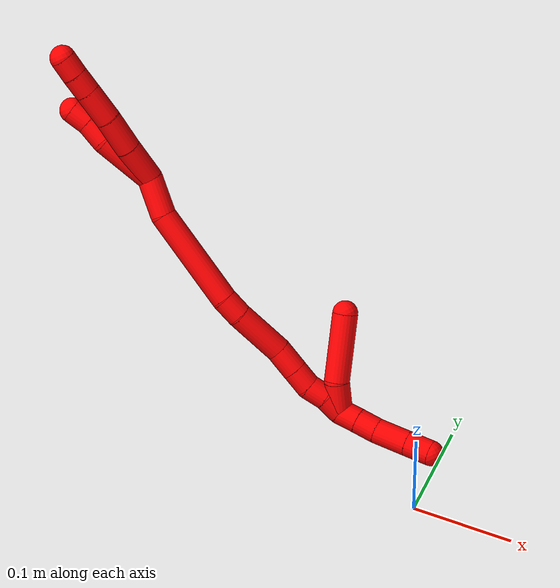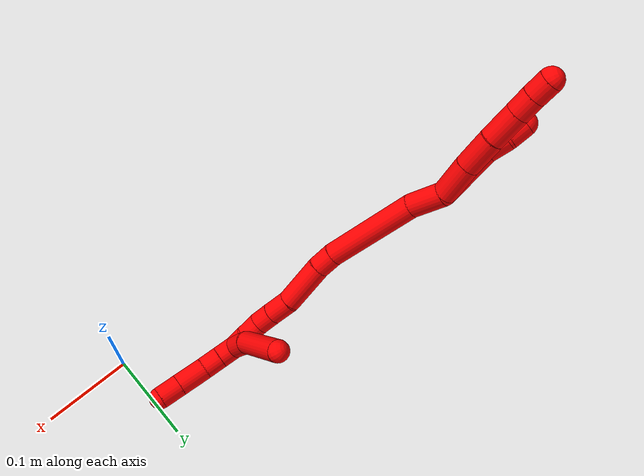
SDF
<sdf version="1.7">
 <world name="default">
  <model name="2">
   <static>0</static>
   <link name="2">
    <collision name="collision-cylinder-e_1_2_8">
     <pose>-0.005475 -0.004345 0.01816 0.234823 -0.285197 -0.033867</pose>
     <geometry><cylinder><radius>0.0125</radius><length>0.038917</length></cylinder></geometry>
     <surface>
      <friction><ode><mu>1.16</mu><mu2>1.16</mu2><slip1>0</slip1><slip2>0</slip2></ode></friction>
      <contact><ode><kp>1e+06</kp><kd>1</kd><max_vel>0</max_vel><min_depth>0.001</min_depth></ode></contact>
     </surface>
    </collision>
    <visual name="visual-cylinder-e_1_2_8">
     <pose>-0.005475 -0.004345 0.01816 0.234823 -0.285197 -0.033867</pose>
     <geometry><cylinder><radius>0.0125</radius><length>0.038917</length></cylinder></geometry>
     <material><ambient>1 0 0 1</ambient></material>
    </visual>
    <collision name="collision-cylinder-e_2_8_9">
     <pose>-0.015265 -0.012269 0.053515 0.205269 -0.240957 -0.024937</pose>
     <geometry><cylinder><radius>0.0125</radius><length>0.036172</length></cylinder></geometry>
     <surface>
      <friction><ode><mu>1.16</mu><mu2>1.16</mu2><slip1>0</slip1><slip2>0</slip2></ode></friction>
      <contact><ode><kp>1e+06</kp><kd>1</kd><max_vel>0</max_vel><min_depth>0.001</min_depth></ode></contact>
     </surface>
    </collision>
    <visual name="visual-cylinder-e_2_8_9">
     <pose>-0.015265 -0.012269 0.053515 0.205269 -0.240957 -0.024937</pose>
     <geometry><cylinder><radius>0.0125</radius><length>0.036172</length></cylinder></geometry>
     <material><ambient>1 0 0 1</ambient></material>
    </visual>
    <collision name="collision-cylinder-e_3_9_10">
     <pose>-0.024018 -0.017874 0.086906 0.124371 -0.265426 -0.016624</pose>
     <geometry><cylinder><radius>0.0125</radius><length>0.03383</length></cylinder></geometry>
     <surface>
      <friction><ode><mu>1.16</mu><mu2>1.16</mu2><slip1>0</slip1><slip2>0</slip2></ode></friction>
      <contact><ode><kp>1e+06</kp><kd>1</kd><max_vel>0</max_vel><min_depth>0.001</min_depth></ode></contact>
     </surface>
    </collision>
    <visual name="visual-cylinder-e_3_9_10">
     <pose>-0.024018 -0.017874 0.086906 0.124371 -0.265426 -0.016624</pose>
     <geometry><cylinder><radius>0.0125</radius><length>0.03383</length></cylinder></geometry>
     <material><ambient>1 0 0 1</ambient></material>
    </visual>
    <collision name="collision-cylinder-e_4_10_11">
     <pose>-0.031252 -0.02118 0.113167 0.126593 -0.268992 -0.017152</pose>
     <geometry><cylinder><radius>0.0125</radius><length>0.02105</length></cylinder></geometry>
     <surface>
      <friction><ode><mu>1.16</mu><mu2>1.16</mu2><slip1>0</slip1><slip2>0</slip2></ode></friction>
      <contact><ode><kp>1e+06</kp><kd>1</kd><max_vel>0</max_vel><min_depth>0.001</min_depth></ode></contact>
     </surface>
    </collision>
    <visual name="visual-cylinder-e_4_10_11">
     <pose>-0.031252 -0.02118 0.113167 0.126593 -0.268992 -0.017152</pose>
     <geometry><cylinder><radius>0.0125</radius><length>0.02105</length></cylinder></geometry>
     <material><ambient>1 0 0 1</ambient></material>
    </visual>
    <collision name="collision-cylinder-e_5_11_6">
     <pose>-0.036289 -0.023512 0.132938 0.107914 -0.225572 -0.012235</pose>
     <geometry><cylinder><radius>0.0125</radius><length>0.020032</length></cylinder></geometry>
     <surface>
      <friction><ode><mu>1.16</mu><mu2>1.16</mu2><slip1>0</slip1><slip2>0</slip2></ode></friction>
      <contact><ode><kp>1e+06</kp><kd>1</kd><max_vel>0</max_vel><min_depth>0.001</min_depth></ode></contact>
     </surface>
    </collision>
    <visual name="visual-cylinder-e_5_11_6">
     <pose>-0.036289 -0.023512 0.132938 0.107914 -0.225572 -0.012235</pose>
     <geometry><cylinder><radius>0.0125</radius><length>0.020032</length></cylinder></geometry>
     <material><ambient>1 0 0 1</ambient></material>
    </visual>
    <collision name="collision-cylinder-e_1_2_12">
     <pose>-0.012002 0.003149 0.025486 -0.122935 -0.437192 0.027342</pose>
     <geometry><cylinder><radius>0.0125</radius><length>0.056691</length></cylinder></geometry>
     <surface>
      <friction><ode><mu>1.16</mu><mu2>1.16</mu2><slip1>0</slip1><slip2>0</slip2></ode></friction>
      <contact><ode><kp>1e+06</kp><kd>1</kd><max_vel>0</max_vel><min_depth>0.001</min_depth></ode></contact>
     </surface>
    </collision>
    <visual name="visual-cylinder-e_1_2_12">
     <pose>-0.012002 0.003149 0.025486 -0.122935 -0.437192 0.027342</pose>
     <geometry><cylinder><radius>0.0125</radius><length>0.056691</length></cylinder></geometry>
     <material><ambient>1 0 0 1</ambient></material>
    </visual>
    <collision name="collision-cylinder-e_2_12_13">
     <pose>-0.026242 0.008916 0.062096 -0.231146 -0.193424 0.022524</pose>
     <geometry><cylinder><radius>0.0125</radius><length>0.023291</length></cylinder></geometry>
     <surface>
      <friction><ode><mu>1.16</mu><mu2>1.16</mu2><slip1>0</slip1><slip2>0</slip2></ode></friction>
      <contact><ode><kp>1e+06</kp><kd>1</kd><max_vel>0</max_vel><min_depth>0.001</min_depth></ode></contact>
     </surface>
    </collision>
    <visual name="visual-cylinder-e_2_12_13">
     <pose>-0.026242 0.008916 0.062096 -0.231146 -0.193424 0.022524</pose>
     <geometry><cylinder><radius>0.0125</radius><length>0.023291</length></cylinder></geometry>
     <material><ambient>1 0 0 1</ambient></material>
    </visual>
    <collision name="collision-cylinder-e_3_13_5">
     <pose>-0.032431 0.014556 0.081906 -0.334837 -0.405797 0.069509</pose>
     <geometry><cylinder><radius>0.0125</radius><length>0.020017</length></cylinder></geometry>
     <surface>
      <friction><ode><mu>1.16</mu><mu2>1.16</mu2><slip1>0</slip1><slip2>0</slip2></ode></friction>
      <contact><ode><kp>1e+06</kp><kd>1</kd><max_vel>0</max_vel><min_depth>0.001</min_depth></ode></contact>
     </surface>
    </collision>
    <visual name="visual-cylinder-e_3_13_5">
     <pose>-0.032431 0.014556 0.081906 -0.334837 -0.405797 0.069509</pose>
     <geometry><cylinder><radius>0.0125</radius><length>0.020017</length></cylinder></geometry>
     <material><ambient>1 0 0 1</ambient></material>
    </visual>
    <collision name="collision-cylinder-e_1_2_14">
     <pose>-0.002131 -0.000696 -0.019108 3.10519 -0.110977 -2.5082</pose>
     <geometry><cylinder><radius>0.0125</radius><length>0.038478</length></cylinder></geometry>
     <surface>
      <friction><ode><mu>1.16</mu><mu2>1.16</mu2><slip1>0</slip1><slip2>0</slip2></ode></friction>
      <contact><ode><kp>1e+06</kp><kd>1</kd><max_vel>0</max_vel><min_depth>0.001</min_depth></ode></contact>
     </surface>
    </collision>
    <visual name="visual-cylinder-e_1_2_14">
     <pose>-0.002131 -0.000696 -0.019108 3.10519 -0.110977 -2.5082</pose>
     <geometry><cylinder><radius>0.0125</radius><length>0.038478</length></cylinder></geometry>
     <material><ambient>1 0 0 1</ambient></material>
    </visual>
    <collision name="collision-cylinder-e_2_14_15">
     <pose>0.003555 -0.007835 -0.087273 3.011 0.15669 1.75264</pose>
     <geometry><cylinder><radius>0.0125</radius><length>0.100182</length></cylinder></geometry>
     <surface>
      <friction><ode><mu>1.16</mu><mu2>1.16</mu2><slip1>0</slip1><slip2>0</slip2></ode></friction>
      <contact><ode><kp>1e+06</kp><kd>1</kd><max_vel>0</max_vel><min_depth>0.001</min_depth></ode></contact>
     </surface>
    </collision>
    <visual name="visual-cylinder-e_2_14_15">
     <pose>0.003555 -0.007835 -0.087273 3.011 0.15669 1.75264</pose>
     <geometry><cylinder><radius>0.0125</radius><length>0.100182</length></cylinder></geometry>
     <material><ambient>1 0 0 1</ambient></material>
    </visual>
    <collision name="collision-cylinder-e_3_15_16">
     <pose>0.014625 -0.015192 -0.146761 3.05416 0.301199 2.58028</pose>
     <geometry><cylinder><radius>0.0125</radius><length>0.021931</length></cylinder></geometry>
     <surface>
      <friction><ode><mu>1.16</mu><mu2>1.16</mu2><slip1>0</slip1><slip2>0</slip2></ode></friction>
      <contact><ode><kp>1e+06</kp><kd>1</kd><max_vel>0</max_vel><min_depth>0.001</min_depth></ode></contact>
     </surface>
    </collision>
    <visual name="visual-cylinder-e_3_15_16">
     <pose>0.014625 -0.015192 -0.146761 3.05416 0.301199 2.58028</pose>
     <geometry><cylinder><radius>0.0125</radius><length>0.021931</length></cylinder></geometry>
     <material><ambient>1 0 0 1</ambient></material>
    </visual>
    <collision name="collision-cylinder-e_4_16_17">
     <pose>0.028558 -0.016587 -0.181199 3.12158 0.418514 3.04744</pose>
     <geometry><cylinder><radius>0.0125</radius><length>0.052557</length></cylinder></geometry>
     <surface>
      <friction><ode><mu>1.16</mu><mu2>1.16</mu2><slip1>0</slip1><slip2>0</slip2></ode></friction>
      <contact><ode><kp>1e+06</kp><kd>1</kd><max_vel>0</max_vel><min_depth>0.001</min_depth></ode></contact>
     </surface>
    </collision>
    <visual name="visual-cylinder-e_4_16_17">
     <pose>0.028558 -0.016587 -0.181199 3.12158 0.418514 3.04744</pose>
     <geometry><cylinder><radius>0.0125</radius><length>0.052557</length></cylinder></geometry>
     <material><ambient>1 0 0 1</ambient></material>
    </visual>
    <collision name="collision-cylinder-e_5_17_18">
     <pose>0.042087 -0.018419 -0.217601 3.033 0.224651 2.2436</pose>
     <geometry><cylinder><radius>0.0125</radius><length>0.025583</length></cylinder></geometry>
     <surface>
      <friction><ode><mu>1.16</mu><mu2>1.16</mu2><slip1>0</slip1><slip2>0</slip2></ode></friction>
      <contact><ode><kp>1e+06</kp><kd>1</kd><max_vel>0</max_vel><min_depth>0.001</min_depth></ode></contact>
     </surface>
    </collision>
    <visual name="visual-cylinder-e_5_17_18">
     <pose>0.042087 -0.018419 -0.217601 3.033 0.224651 2.2436</pose>
     <geometry><cylinder><radius>0.0125</radius><length>0.025583</length></cylinder></geometry>
     <material><ambient>1 0 0 1</ambient></material>
    </visual>
    <collision name="collision-cylinder-e_6_18_19">
     <pose>0.047374 -0.020742 -0.240267 3.0472 0.23198 2.37131</pose>
     <geometry><cylinder><radius>0.0125</radius><length>0.021199</length></cylinder></geometry>
     <surface>
      <friction><ode><mu>1.16</mu><mu2>1.16</mu2><slip1>0</slip1><slip2>0</slip2></ode></friction>
      <contact><ode><kp>1e+06</kp><kd>1</kd><max_vel>0</max_vel><min_depth>0.001</min_depth></ode></contact>
     </surface>
    </collision>
    <visual name="visual-cylinder-e_6_18_19">
     <pose>0.047374 -0.020742 -0.240267 3.0472 0.23198 2.37131</pose>
     <geometry><cylinder><radius>0.0125</radius><length>0.021199</length></cylinder></geometry>
     <material><ambient>1 0 0 1</ambient></material>
    </visual>
    <collision name="collision-cylinder-e_7_19_20">
     <pose>0.054584 -0.024511 -0.258894 2.81869 0.496391 1.99916</pose>
     <geometry><cylinder><radius>0.0125</radius><length>0.020045</length></cylinder></geometry>
     <surface>
      <friction><ode><mu>1.16</mu><mu2>1.16</mu2><slip1>0</slip1><slip2>0</slip2></ode></friction>
      <contact><ode><kp>1e+06</kp><kd>1</kd><max_vel>0</max_vel><min_depth>0.001</min_depth></ode></contact>
     </surface>
    </collision>
    <visual name="visual-cylinder-e_7_19_20">
     <pose>0.054584 -0.024511 -0.258894 2.81869 0.496391 1.99916</pose>
     <geometry><cylinder><radius>0.0125</radius><length>0.020045</length></cylinder></geometry>
     <material><ambient>1 0 0 1</ambient></material>
    </visual>
    <collision name="collision-cylinder-e_8_20_1">
     <pose>0.062827 -0.027912 -0.276624 3.07725 0.353947 2.78551</pose>
     <geometry><cylinder><radius>0.0125</radius><length>0.020024</length></cylinder></geometry>
     <surface>
      <friction><ode><mu>1.16</mu><mu2>1.16</mu2><slip1>0</slip1><slip2>0</slip2></ode></friction>
      <contact><ode><kp>1e+06</kp><kd>1</kd><max_vel>0</max_vel><min_depth>0.001</min_depth></ode></contact>
     </surface>
    </collision>
    <visual name="visual-cylinder-e_8_20_1">
     <pose>0.062827 -0.027912 -0.276624 3.07725 0.353947 2.78551</pose>
     <geometry><cylinder><radius>0.0125</radius><length>0.020024</length></cylinder></geometry>
     <material><ambient>1 0 0 1</ambient></material>
    </visual>
    <collision name="collision-cylinder-e_1_1_21">
     <pose>0.069221 -0.033814 -0.27118 0.343461 0.183729 0.031953</pose>
     <geometry><cylinder><radius>0.0125</radius><length>0.032007</length></cylinder></geometry>
     <surface>
      <friction><ode><mu>1.16</mu><mu2>1.16</mu2><slip1>0</slip1><slip2>0</slip2></ode></friction>
      <contact><ode><kp>1e+06</kp><kd>1</kd><max_vel>0</max_vel><min_depth>0.001</min_depth></ode></contact>
     </surface>
    </collision>
    <visual name="visual-cylinder-e_1_1_21">
     <pose>0.069221 -0.033814 -0.27118 0.343461 0.183729 0.031953</pose>
     <geometry><cylinder><radius>0.0125</radius><length>0.032007</length></cylinder></geometry>
     <material><ambient>1 0 0 1</ambient></material>
    </visual>
    <collision name="collision-cylinder-e_2_21_4">
     <pose>0.087855 -0.047165 -0.227312 0.270386 0.480381 0.066604</pose>
     <geometry><cylinder><radius>0.0125</radius><length>0.067993</length></cylinder></geometry>
     <surface>
      <friction><ode><mu>1.16</mu><mu2>1.16</mu2><slip1>0</slip1><slip2>0</slip2></ode></friction>
      <contact><ode><kp>1e+06</kp><kd>1</kd><max_vel>0</max_vel><min_depth>0.001</min_depth></ode></contact>
     </surface>
    </collision>
    <visual name="visual-cylinder-e_2_21_4">
     <pose>0.087855 -0.047165 -0.227312 0.270386 0.480381 0.066604</pose>
     <geometry><cylinder><radius>0.0125</radius><length>0.067993</length></cylinder></geometry>
     <material><ambient>1 0 0 1</ambient></material>
    </visual>
    <collision name="collision-cylinder-e_1_1_22">
     <pose>0.070679 -0.033926 -0.293333 2.50623 0.447945 1.21171</pose>
     <geometry><cylinder><radius>0.0125</radius><length>0.020231</length></cylinder></geometry>
     <surface>
      <friction><ode><mu>1.16</mu><mu2>1.16</mu2><slip1>0</slip1><slip2>0</slip2></ode></friction>
      <contact><ode><kp>1e+06</kp><kd>1</kd><max_vel>0</max_vel><min_depth>0.001</min_depth></ode></contact>
     </surface>
    </collision>
    <visual name="visual-cylinder-e_1_1_22">
     <pose>0.070679 -0.033926 -0.293333 2.50623 0.447945 1.21171</pose>
     <geometry><cylinder><radius>0.0125</radius><length>0.020231</length></cylinder></geometry>
     <material><ambient>1 0 0 1</ambient></material>
    </visual>
    <collision name="collision-cylinder-e_2_22_23">
     <pose>0.079595 -0.044828 -0.308512 2.53062 0.442474 1.23909</pose>
     <geometry><cylinder><radius>0.0125</radius><length>0.021185</length></cylinder></geometry>
     <surface>
      <friction><ode><mu>1.16</mu><mu2>1.16</mu2><slip1>0</slip1><slip2>0</slip2></ode></friction>
      <contact><ode><kp>1e+06</kp><kd>1</kd><max_vel>0</max_vel><min_depth>0.001</min_depth></ode></contact>
     </surface>
    </collision>
    <visual name="visual-cylinder-e_2_22_23">
     <pose>0.079595 -0.044828 -0.308512 2.53062 0.442474 1.23909</pose>
     <geometry><cylinder><radius>0.0125</radius><length>0.021185</length></cylinder></geometry>
     <material><ambient>1 0 0 1</ambient></material>
    </visual>
    <collision name="collision-cylinder-e_3_23_24">
     <pose>0.091673 -0.060621 -0.327146 2.37951 0.468038 1.07353</pose>
     <geometry><cylinder><radius>0.0125</radius><length>0.033438</length></cylinder></geometry>
     <surface>
      <friction><ode><mu>1.16</mu><mu2>1.16</mu2><slip1>0</slip1><slip2>0</slip2></ode></friction>
      <contact><ode><kp>1e+06</kp><kd>1</kd><max_vel>0</max_vel><min_depth>0.001</min_depth></ode></contact>
     </surface>
    </collision>
    <visual name="visual-cylinder-e_3_23_24">
     <pose>0.091673 -0.060621 -0.327146 2.37951 0.468038 1.07353</pose>
     <geometry><cylinder><radius>0.0125</radius><length>0.033438</length></cylinder></geometry>
     <material><ambient>1 0 0 1</ambient></material>
    </visual>
    <collision name="collision-cylinder-e_4_24_3">
     <pose>0.1049 -0.078702 -0.346019 2.37512 0.469112 1.07006</pose>
     <geometry><cylinder><radius>0.0125</radius><length>0.025147</length></cylinder></geometry>
     <surface>
      <friction><ode><mu>1.16</mu><mu2>1.16</mu2><slip1>0</slip1><slip2>0</slip2></ode></friction>
      <contact><ode><kp>1e+06</kp><kd>1</kd><max_vel>0</max_vel><min_depth>0.001</min_depth></ode></contact>
     </surface>
    </collision>
    <visual name="visual-cylinder-e_4_24_3">
     <pose>0.1049 -0.078702 -0.346019 2.37512 0.469112 1.07006</pose>
     <geometry><cylinder><radius>0.0125</radius><length>0.025147</length></cylinder></geometry>
     <material><ambient>1 0 0 1</ambient></material>
    </visual>
    <collision name="collision-sphere-3">
     <pose>0.110584 -0.086481 -0.354098 0 -0 0</pose>
     <geometry><sphere><radius>0.0125</radius></sphere></geometry>
     <surface>
      <friction><ode><mu>1.16</mu><mu2>1.16</mu2><slip1>0</slip1><slip2>0</slip2></ode></friction>
      <contact><ode><kp>1e+06</kp><kd>1</kd><max_vel>0</max_vel><min_depth>0.001</min_depth></ode></contact>
     </surface>
    </collision>
    <visual name="visual-sphere-3">
     <pose>0.110584 -0.086481 -0.354098 0 -0 0</pose>
     <geometry><sphere><radius>0.0125</radius></sphere></geometry>
     <material><ambient>1 0 0 1</ambient></material>
    </visual>
    <collision name="collision-sphere-24">
     <pose>0.099215 -0.070923 -0.33794 0 -0 0</pose>
     <geometry><sphere><radius>0.0125</radius></sphere></geometry>
     <surface>
      <friction><ode><mu>1.16</mu><mu2>1.16</mu2><slip1>0</slip1><slip2>0</slip2></ode></friction>
      <contact><ode><kp>1e+06</kp><kd>1</kd><max_vel>0</max_vel><min_depth>0.001</min_depth></ode></contact>
     </surface>
    </collision>
    <visual name="visual-sphere-24">
     <pose>0.099215 -0.070923 -0.33794 0 -0 0</pose>
     <geometry><sphere><radius>0.0125</radius></sphere></geometry>
     <material><ambient>1 0 0 1</ambient></material>
    </visual>
    <collision name="collision-sphere-23">
     <pose>0.08413 -0.05032 -0.316353 0 -0 0</pose>
     <geometry><sphere><radius>0.0125</radius></sphere></geometry>
     <surface>
      <friction><ode><mu>1.16</mu><mu2>1.16</mu2><slip1>0</slip1><slip2>0</slip2></ode></friction>
      <contact><ode><kp>1e+06</kp><kd>1</kd><max_vel>0</max_vel><min_depth>0.001</min_depth></ode></contact>
     </surface>
    </collision>
    <visual name="visual-sphere-23">
     <pose>0.08413 -0.05032 -0.316353 0 -0 0</pose>
     <geometry><sphere><radius>0.0125</radius></sphere></geometry>
     <material><ambient>1 0 0 1</ambient></material>
    </visual>
    <collision name="collision-sphere-22">
     <pose>0.07506 -0.039337 -0.300672 0 -0 0</pose>
     <geometry><sphere><radius>0.0125</radius></sphere></geometry>
     <surface>
      <friction><ode><mu>1.16</mu><mu2>1.16</mu2><slip1>0</slip1><slip2>0</slip2></ode></friction>
      <contact><ode><kp>1e+06</kp><kd>1</kd><max_vel>0</max_vel><min_depth>0.001</min_depth></ode></contact>
     </surface>
    </collision>
    <visual name="visual-sphere-22">
     <pose>0.07506 -0.039337 -0.300672 0 -0 0</pose>
     <geometry><sphere><radius>0.0125</radius></sphere></geometry>
     <material><ambient>1 0 0 1</ambient></material>
    </visual>
    <collision name="collision-sphere-4">
     <pose>0.103566 -0.055218 -0.198258 0 -0 0</pose>
     <geometry><sphere><radius>0.0125</radius></sphere></geometry>
     <surface>
      <friction><ode><mu>1.16</mu><mu2>1.16</mu2><slip1>0</slip1><slip2>0</slip2></ode></friction>
      <contact><ode><kp>1e+06</kp><kd>1</kd><max_vel>0</max_vel><min_depth>0.001</min_depth></ode></contact>
     </surface>
    </collision>
    <visual name="visual-sphere-4">
     <pose>0.103566 -0.055218 -0.198258 0 -0 0</pose>
     <geometry><sphere><radius>0.0125</radius></sphere></geometry>
     <material><ambient>1 0 0 1</ambient></material>
    </visual>
    <collision name="collision-sphere-21">
     <pose>0.072145 -0.039112 -0.256365 0 -0 0</pose>
     <geometry><sphere><radius>0.0125</radius></sphere></geometry>
     <surface>
      <friction><ode><mu>1.16</mu><mu2>1.16</mu2><slip1>0</slip1><slip2>0</slip2></ode></friction>
      <contact><ode><kp>1e+06</kp><kd>1</kd><max_vel>0</max_vel><min_depth>0.001</min_depth></ode></contact>
     </surface>
    </collision>
    <visual name="visual-sphere-21">
     <pose>0.072145 -0.039112 -0.256365 0 -0 0</pose>
     <geometry><sphere><radius>0.0125</radius></sphere></geometry>
     <material><ambient>1 0 0 1</ambient></material>
    </visual>
    <collision name="collision-sphere-1">
     <pose>0.066297 -0.028515 -0.285995 0 -0 0</pose>
     <geometry><sphere><radius>0.0125</radius></sphere></geometry>
     <surface>
      <friction><ode><mu>1.16</mu><mu2>1.16</mu2><slip1>0</slip1><slip2>0</slip2></ode></friction>
      <contact><ode><kp>1e+06</kp><kd>1</kd><max_vel>0</max_vel><min_depth>0.001</min_depth></ode></contact>
     </surface>
    </collision>
    <visual name="visual-sphere-1">
     <pose>0.066297 -0.028515 -0.285995 0 -0 0</pose>
     <geometry><sphere><radius>0.0125</radius></sphere></geometry>
     <material><ambient>1 0 0 1</ambient></material>
    </visual>
    <collision name="collision-sphere-6">
     <pose>-0.03853 -0.024564 0.142643 0 -0 0</pose>
     <geometry><sphere><radius>0.0125</radius></sphere></geometry>
     <surface>
      <friction><ode><mu>1.16</mu><mu2>1.16</mu2><slip1>0</slip1><slip2>0</slip2></ode></friction>
      <contact><ode><kp>1e+06</kp><kd>1</kd><max_vel>0</max_vel><min_depth>0.001</min_depth></ode></contact>
     </surface>
    </collision>
    <visual name="visual-sphere-6">
     <pose>-0.03853 -0.024564 0.142643 0 -0 0</pose>
     <geometry><sphere><radius>0.0125</radius></sphere></geometry>
     <material><ambient>1 0 0 1</ambient></material>
    </visual>
    <collision name="collision-sphere-11">
     <pose>-0.034049 -0.022461 0.123232 0 -0 0</pose>
     <geometry><sphere><radius>0.0125</radius></sphere></geometry>
     <surface>
      <friction><ode><mu>1.16</mu><mu2>1.16</mu2><slip1>0</slip1><slip2>0</slip2></ode></friction>
      <contact><ode><kp>1e+06</kp><kd>1</kd><max_vel>0</max_vel><min_depth>0.001</min_depth></ode></contact>
     </surface>
    </collision>
    <visual name="visual-sphere-11">
     <pose>-0.034049 -0.022461 0.123232 0 -0 0</pose>
     <geometry><sphere><radius>0.0125</radius></sphere></geometry>
     <material><ambient>1 0 0 1</ambient></material>
    </visual>
    <collision name="collision-sphere-10">
     <pose>-0.028455 -0.019899 0.103102 0 -0 0</pose>
     <geometry><sphere><radius>0.0125</radius></sphere></geometry>
     <surface>
      <friction><ode><mu>1.16</mu><mu2>1.16</mu2><slip1>0</slip1><slip2>0</slip2></ode></friction>
      <contact><ode><kp>1e+06</kp><kd>1</kd><max_vel>0</max_vel><min_depth>0.001</min_depth></ode></contact>
     </surface>
    </collision>
    <visual name="visual-sphere-10">
     <pose>-0.028455 -0.019899 0.103102 0 -0 0</pose>
     <geometry><sphere><radius>0.0125</radius></sphere></geometry>
     <material><ambient>1 0 0 1</ambient></material>
    </visual>
    <collision name="collision-sphere-9">
     <pose>-0.019581 -0.015849 0.07071 0 -0 0</pose>
     <geometry><sphere><radius>0.0125</radius></sphere></geometry>
     <surface>
      <friction><ode><mu>1.16</mu><mu2>1.16</mu2><slip1>0</slip1><slip2>0</slip2></ode></friction>
      <contact><ode><kp>1e+06</kp><kd>1</kd><max_vel>0</max_vel><min_depth>0.001</min_depth></ode></contact>
     </surface>
    </collision>
    <visual name="visual-sphere-9">
     <pose>-0.019581 -0.015849 0.07071 0 -0 0</pose>
     <geometry><sphere><radius>0.0125</radius></sphere></geometry>
     <material><ambient>1 0 0 1</ambient></material>
    </visual>
    <collision name="collision-sphere-2">
     <geometry><sphere><radius>0.0125</radius></sphere></geometry>
     <surface>
      <friction><ode><mu>1.16</mu><mu2>1.16</mu2><slip1>0</slip1><slip2>0</slip2></ode></friction>
      <contact><ode><kp>1e+06</kp><kd>1</kd><max_vel>0</max_vel><min_depth>0.001</min_depth></ode></contact>
     </surface>
    </collision>
    <visual name="visual-sphere-2">
     <geometry><sphere><radius>0.0125</radius></sphere></geometry>
     <material><ambient>1 0 0 1</ambient></material>
    </visual>
    <collision name="collision-sphere-19">
     <pose>0.049811 -0.021715 -0.250537 0 -0 0</pose>
     <geometry><sphere><radius>0.0125</radius></sphere></geometry>
     <surface>
      <friction><ode><mu>1.16</mu><mu2>1.16</mu2><slip1>0</slip1><slip2>0</slip2></ode></friction>
      <contact><ode><kp>1e+06</kp><kd>1</kd><max_vel>0</max_vel><min_depth>0.001</min_depth></ode></contact>
     </surface>
    </collision>
    <visual name="visual-sphere-19">
     <pose>0.049811 -0.021715 -0.250537 0 -0 0</pose>
     <geometry><sphere><radius>0.0125</radius></sphere></geometry>
     <material><ambient>1 0 0 1</ambient></material>
    </visual>
    <collision name="collision-sphere-8">
     <pose>-0.010949 -0.008689 0.03632 0 -0 0</pose>
     <geometry><sphere><radius>0.0125</radius></sphere></geometry>
     <surface>
      <friction><ode><mu>1.16</mu><mu2>1.16</mu2><slip1>0</slip1><slip2>0</slip2></ode></friction>
      <contact><ode><kp>1e+06</kp><kd>1</kd><max_vel>0</max_vel><min_depth>0.001</min_depth></ode></contact>
     </surface>
    </collision>
    <visual name="visual-sphere-8">
     <pose>-0.010949 -0.008689 0.03632 0 -0 0</pose>
     <geometry><sphere><radius>0.0125</radius></sphere></geometry>
     <material><ambient>1 0 0 1</ambient></material>
    </visual>
    <collision name="collision-sphere-12">
     <pose>-0.024003 0.006298 0.050972 0 -0 0</pose>
     <geometry><sphere><radius>0.0125</radius></sphere></geometry>
     <surface>
      <friction><ode><mu>1.16</mu><mu2>1.16</mu2><slip1>0</slip1><slip2>0</slip2></ode></friction>
      <contact><ode><kp>1e+06</kp><kd>1</kd><max_vel>0</max_vel><min_depth>0.001</min_depth></ode></contact>
     </surface>
    </collision>
    <visual name="visual-sphere-12">
     <pose>-0.024003 0.006298 0.050972 0 -0 0</pose>
     <geometry><sphere><radius>0.0125</radius></sphere></geometry>
     <material><ambient>1 0 0 1</ambient></material>
    </visual>
    <collision name="collision-sphere-13">
     <pose>-0.02848 0.011534 0.073221 0 -0 0</pose>
     <geometry><sphere><radius>0.0125</radius></sphere></geometry>
     <surface>
      <friction><ode><mu>1.16</mu><mu2>1.16</mu2><slip1>0</slip1><slip2>0</slip2></ode></friction>
      <contact><ode><kp>1e+06</kp><kd>1</kd><max_vel>0</max_vel><min_depth>0.001</min_depth></ode></contact>
     </surface>
    </collision>
    <visual name="visual-sphere-13">
     <pose>-0.02848 0.011534 0.073221 0 -0 0</pose>
     <geometry><sphere><radius>0.0125</radius></sphere></geometry>
     <material><ambient>1 0 0 1</ambient></material>
    </visual>
    <collision name="collision-sphere-5">
     <pose>-0.036382 0.017578 0.090591 0 -0 0</pose>
     <geometry><sphere><radius>0.0125</radius></sphere></geometry>
     <surface>
      <friction><ode><mu>1.16</mu><mu2>1.16</mu2><slip1>0</slip1><slip2>0</slip2></ode></friction>
      <contact><ode><kp>1e+06</kp><kd>1</kd><max_vel>0</max_vel><min_depth>0.001</min_depth></ode></contact>
     </surface>
    </collision>
    <visual name="visual-sphere-5">
     <pose>-0.036382 0.017578 0.090591 0 -0 0</pose>
     <geometry><sphere><radius>0.0125</radius></sphere></geometry>
     <material><ambient>1 0 0 1</ambient></material>
    </visual>
    <collision name="collision-sphere-14">
     <pose>-0.004261 -0.001392 -0.038216 0 -0 0</pose>
     <geometry><sphere><radius>0.0125</radius></sphere></geometry>
     <surface>
      <friction><ode><mu>1.16</mu><mu2>1.16</mu2><slip1>0</slip1><slip2>0</slip2></ode></friction>
      <contact><ode><kp>1e+06</kp><kd>1</kd><max_vel>0</max_vel><min_depth>0.001</min_depth></ode></contact>
     </surface>
    </collision>
    <visual name="visual-sphere-14">
     <pose>-0.004261 -0.001392 -0.038216 0 -0 0</pose>
     <geometry><sphere><radius>0.0125</radius></sphere></geometry>
     <material><ambient>1 0 0 1</ambient></material>
    </visual>
    <collision name="collision-sphere-15">
     <pose>0.011372 -0.014277 -0.136329 0 -0 0</pose>
     <geometry><sphere><radius>0.0125</radius></sphere></geometry>
     <surface>
      <friction><ode><mu>1.16</mu><mu2>1.16</mu2><slip1>0</slip1><slip2>0</slip2></ode></friction>
      <contact><ode><kp>1e+06</kp><kd>1</kd><max_vel>0</max_vel><min_depth>0.001</min_depth></ode></contact>
     </surface>
    </collision>
    <visual name="visual-sphere-15">
     <pose>0.011372 -0.014277 -0.136329 0 -0 0</pose>
     <geometry><sphere><radius>0.0125</radius></sphere></geometry>
     <material><ambient>1 0 0 1</ambient></material>
    </visual>
    <collision name="collision-sphere-16">
     <pose>0.017878 -0.016106 -0.157193 0 -0 0</pose>
     <geometry><sphere><radius>0.0125</radius></sphere></geometry>
     <surface>
      <friction><ode><mu>1.16</mu><mu2>1.16</mu2><slip1>0</slip1><slip2>0</slip2></ode></friction>
      <contact><ode><kp>1e+06</kp><kd>1</kd><max_vel>0</max_vel><min_depth>0.001</min_depth></ode></contact>
     </surface>
    </collision>
    <visual name="visual-sphere-16">
     <pose>0.017878 -0.016106 -0.157193 0 -0 0</pose>
     <geometry><sphere><radius>0.0125</radius></sphere></geometry>
     <material><ambient>1 0 0 1</ambient></material>
    </visual>
    <collision name="collision-sphere-17">
     <pose>0.039238 -0.017067 -0.205205 0 -0 0</pose>
     <geometry><sphere><radius>0.0125</radius></sphere></geometry>
     <surface>
      <friction><ode><mu>1.16</mu><mu2>1.16</mu2><slip1>0</slip1><slip2>0</slip2></ode></friction>
      <contact><ode><kp>1e+06</kp><kd>1</kd><max_vel>0</max_vel><min_depth>0.001</min_depth></ode></contact>
     </surface>
    </collision>
    <visual name="visual-sphere-17">
     <pose>0.039238 -0.017067 -0.205205 0 -0 0</pose>
     <geometry><sphere><radius>0.0125</radius></sphere></geometry>
     <material><ambient>1 0 0 1</ambient></material>
    </visual>
    <collision name="collision-sphere-18">
     <pose>0.044937 -0.01977 -0.229998 0 -0 0</pose>
     <geometry><sphere><radius>0.0125</radius></sphere></geometry>
     <surface>
      <friction><ode><mu>1.16</mu><mu2>1.16</mu2><slip1>0</slip1><slip2>0</slip2></ode></friction>
      <contact><ode><kp>1e+06</kp><kd>1</kd><max_vel>0</max_vel><min_depth>0.001</min_depth></ode></contact>
     </surface>
    </collision>
    <visual name="visual-sphere-18">
     <pose>0.044937 -0.01977 -0.229998 0 -0 0</pose>
     <geometry><sphere><radius>0.0125</radius></sphere></geometry>
     <material><ambient>1 0 0 1</ambient></material>
    </visual>
    <collision name="collision-sphere-20">
     <pose>0.059357 -0.027308 -0.267252 0 -0 0</pose>
     <geometry><sphere><radius>0.0125</radius></sphere></geometry>
     <surface>
      <friction><ode><mu>1.16</mu><mu2>1.16</mu2><slip1>0</slip1><slip2>0</slip2></ode></friction>
      <contact><ode><kp>1e+06</kp><kd>1</kd><max_vel>0</max_vel><min_depth>0.001</min_depth></ode></contact>
     </surface>
    </collision>
    <visual name="visual-sphere-20">
     <pose>0.059357 -0.027308 -0.267252 0 -0 0</pose>
     <geometry><sphere><radius>0.0125</radius></sphere></geometry>
     <material><ambient>1 0 0 1</ambient></material>
    </visual>
    <inertial>
     <pose>0.024846 -0.020488 -0.112929 0 -0 0</pose>
     <mass>0.75</mass>
     <inertia><ixx>0.000135</ixx><ixy>0</ixy><ixz>0</ixz><iyy>0.000202</iyy><iyz>0</iyz><izz>-2e-06</izz></inertia>
    </inertial>
   </link>
   <pose>-0.332419 0.12601 0.199445 -0.784908 -0.012622 1.0258</pose>
  </model>
 </world>
</sdf>
